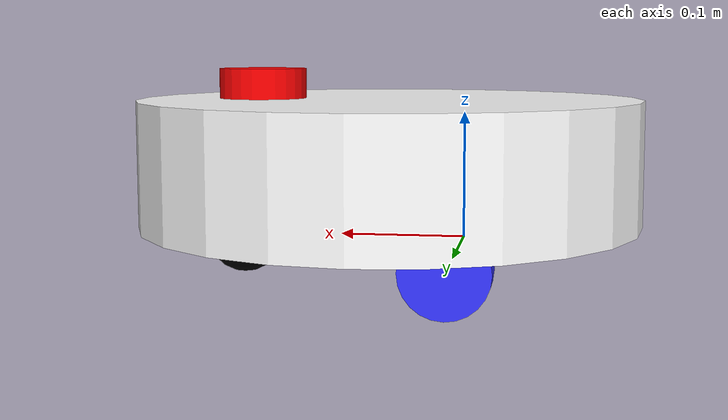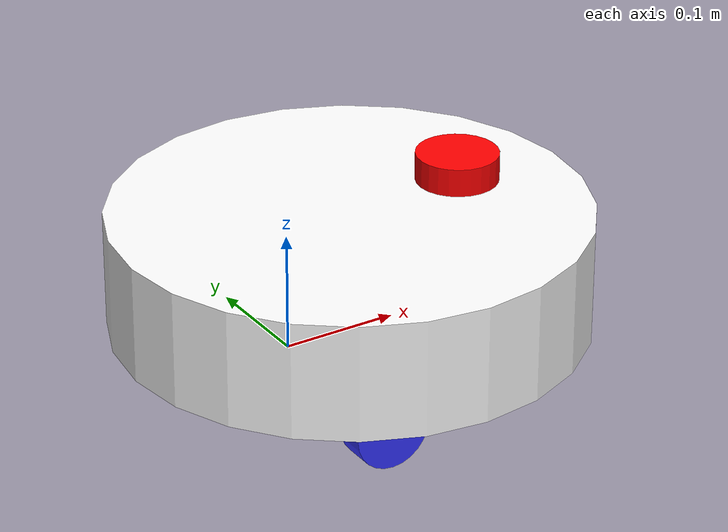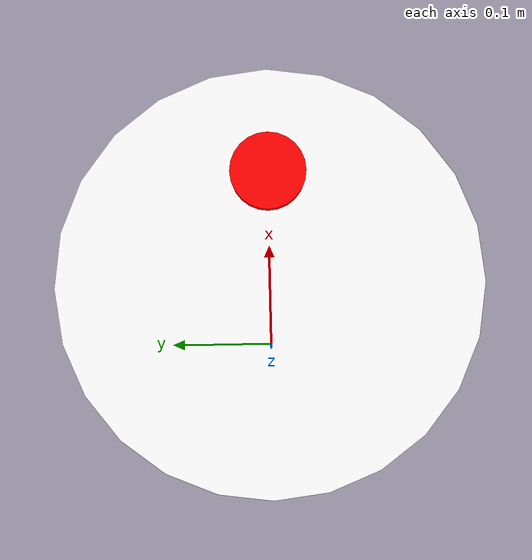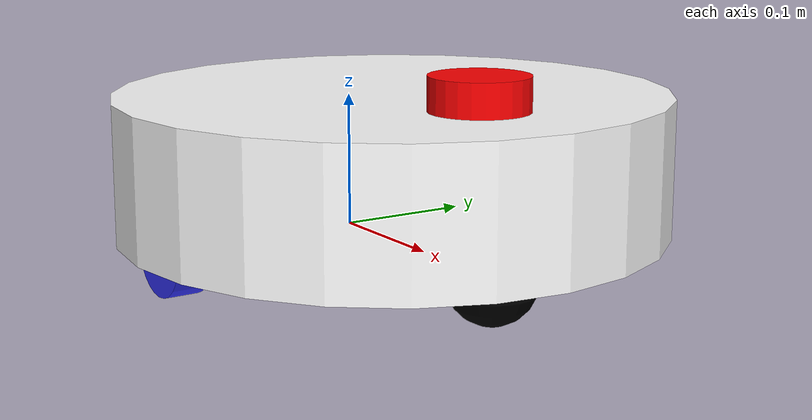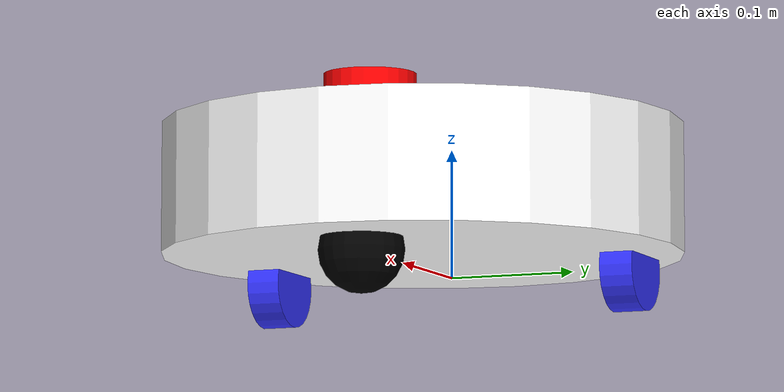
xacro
<?xml version="1.0"?>
<robot xmlns:xacro="http://www.ros.org/wiki/xacro"  name="robot">

    <xacro:arg name="use_ros2_control" default="true"/>
    <xacro:arg name="sim_mode" default="false"/>

    <xacro:include filename="robot_core.xacro" />

    <xacro:if value="$(arg use_ros2_control)">
        <xacro:include filename="ros2_control.xacro" />
    </xacro:if>
    <xacro:unless value="$(arg use_ros2_control)">
        <xacro:include filename="gazebo_control.xacro" />
    </xacro:unless>
    <xacro:include filename="lidar.xacro" />

</robot>

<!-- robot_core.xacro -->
<robot xmlns:xacro="http://www.ros.org/wiki/xacro">

    <xacro:include filename="inertial_macros.xacro"/>

    <material name="white">
        <color rgba="1 1 1 1" />
    </material>

    <material name="orange">
        <color rgba="1 0.3 0.1 1"/>
    </material>

    <material name="blue">
        <color rgba="0.2 0.2 1 1"/>
    </material>

    <material name="black">
        <color rgba="0 0 0 1"/>
    </material>
    <material name="red">
        <color rgba="1 0 0 1"/>
    </material>

    <!-- BASE LINK -->

    <link name="base_link">

    </link>

    <!-- BASE_FOOTPRINT LINK -->

    <joint name="base_footprint_joint" type="fixed">
        <parent link="base_link"/>
        <child link="base_footprint"/>
        <origin xyz="0 0 0" rpy="0 0 0"/>
    </joint>

    <link name="base_footprint">
    </link>
    <!-- CHASSIC LINK-->

    <joint name="chassis_joint" type="fixed">
        <parent link="base_link"/>
        <child link="chassis"/>
        <origin xyz="-0.06 0 0"/>
    </joint>

    <link name="chassis">
        <visual>
            <origin xyz="0.12 0 0.06"/>
            <geometry>
                <cylinder radius="0.2" length="0.1"/>
            </geometry>
            <material name="white"/>
        </visual>
        <collision>
            <origin xyz="0.12 0 0.06"/>
            <geometry>
                <cylinder radius="0.225" length="0.1"/>
            </geometry>
        </collision>
        <xacro:inertial_cylinder mass="5.0" radius="0.225" length="0.1">
            <origin xyz="0.12 0 0.06" rpy="0 0 0"/>
        </xacro:inertial_cylinder>
    </link>
    <gazebo reference="chassis">
        <material>Gazebo/White</material>
    </gazebo>
    <!-- LEFT WHEEL LINK -banh trai-->

    <joint name="left_wheel_joint" type="continuous">
        <parent link="base_link"/>
        <child link="left_wheel"/>
        <origin xyz="0 0.146 0" rpy="-${pi/2} 0 0" />
        <!-- XYZ la vi tri banh xe cach tam base link, xoay cylinder banh1 goc -pi/2(90do)-->
        <axis xyz="0 0 1"/>
        <!-- axis "1" va "-1" laf truc banh xe chuyen dong tien-lui quanh truc z-->
    </joint>

    <link name="left_wheel">
        <visual>
            <geometry>
                <cylinder radius="0.0325" length="0.026"/>
            </geometry>
            <material name="blue"/>
        </visual>
        <collision>
            <geometry>
                <cylinder radius="0.0325" length="0.026"/>
            </geometry>
        </collision>
        <xacro:inertial_cylinder mass="0.1" length="0.026" radius="0.0325">
            <origin xyz="0 0 0" rpy="0 0 0"/>
        </xacro:inertial_cylinder>
    </link>
    <gazebo reference="left_wheel">
        <material>Gazebo/Blue</material>
    </gazebo>
    <!-- RIGHT WHEEL LINK - banh phai-->

    <joint name="right_wheel_joint" type="continuous">
        <parent link="base_link"/>
        <child link="right_wheel"/>
        <origin xyz="0 -0.146 0" rpy="${pi/2} 0 0" />
        <axis xyz="0 0 -1"/>
    </joint>

    <link name="right_wheel">
        <visual>
            <geometry>
                <cylinder radius="0.0325" length="0.026"/>
            </geometry>
            <material name="blue"/>
        </visual>
        <collision>
            <geometry>
                <cylinder radius="0.0325" length="0.026"/>
            </geometry>
        </collision>
        <xacro:inertial_cylinder mass="0.1" length="0.026" radius="0.0325">
            <origin xyz="0 0 0" rpy="0 0 0"/>
        </xacro:inertial_cylinder>

    </link>
    <gazebo reference="right_wheel">
        <material>Gazebo/Blue</material>
    </gazebo>
    <!-- CASTER WHEEL LINK - banh da huong-->

    <joint name="caster_wheel_joint" type="fixed">
        <parent link="chassis"/>
        <child link="caster_wheel"/>
        <origin xyz="0.24 0 0"/>
    </joint>

    <link name="caster_wheel">
        <visual>
            <geometry>
                <sphere radius="0.0325"/>
            </geometry>
            <material name="black"/>
        </visual>
        <collision>
            <geometry>
                <sphere radius="0.0325"/>
            </geometry>
        </collision>
        <xacro:inertial_sphere mass="0.2" radius="0.0325">
            <origin xyz="0 0 0" rpy="0 0 0"/>
        </xacro:inertial_sphere>
    </link>
    <gazebo reference="caster_wheel">
        <material>Gazebo/Black</material>
        <mu1 value="0.001"/>
        <mu2 value="0.001"/>
    </gazebo>

</robot>

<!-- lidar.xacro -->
<robot xmlns:xacro="http://www.ros.org/wiki/xacro" >

    <joint name="laser_joint" type="fixed">
        <parent link="chassis"/>
        <child link="laser_frame"/>
        <origin xyz="0.224 0 0.12" rpy="0 0 ${pi/2}"/>
    </joint>

    <link name="laser_frame">
        <visual>
            <geometry>
                <cylinder radius="0.035" length="0.028"/>
            </geometry>
            <material name="red"/>
        </visual>
        <collision>
            <geometry>
                <cylinder radius="0.035" length="0.028"/>
            </geometry>
        </collision>
        <xacro:inertial_cylinder mass="0.1" length="0.028" radius="0.03">
            <origin xyz="0 0 0" rpy="0 0 0"/>
        </xacro:inertial_cylinder>
    </link>

    <gazebo reference="laser_frame">
        <material>Gazebo/Red</material>

        <sensor name="laser" type="ray">
            <pose> 0 0 0 0 0 0 </pose>
            <visualize>true</visualize>
            <update_rate>10</update_rate>
            <ray>
                <scan>
                    <horizontal>
                        <samples>360</samples>
                        <min_angle>-3.14</min_angle>
                        <max_angle>3.14</max_angle>
                    </horizontal>
                </scan>
                <range>
                    <min>0.3</min>
                    <max>12</max>
                </range>
            </ray>
            <plugin name="laser_controller" filename="libgazebo_ros_ray_sensor.so">
                <ros>
                    <argument>~/out:=scan</argument>
                </ros>
                <output_type>sensor_msgs/LaserScan</output_type>
                <frame_name>laser_frame</frame_name>
            </plugin>
        </sensor>
    </gazebo>

</robot>
